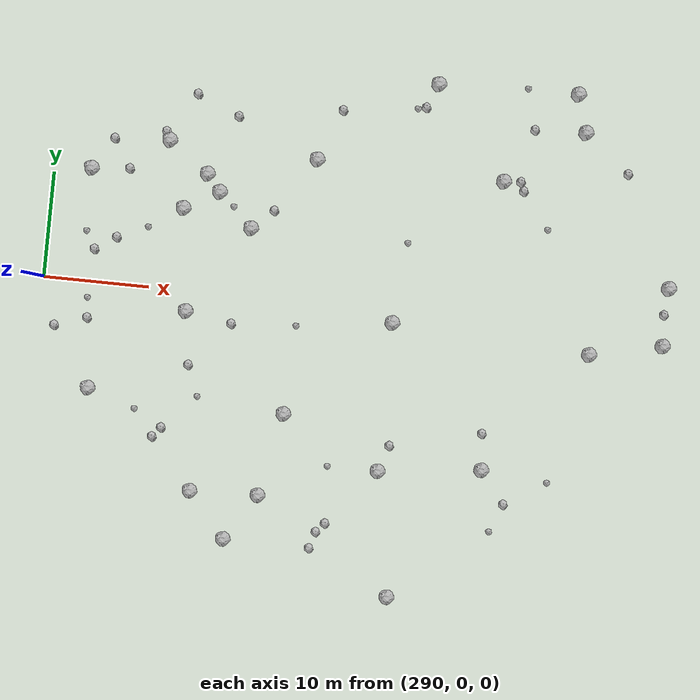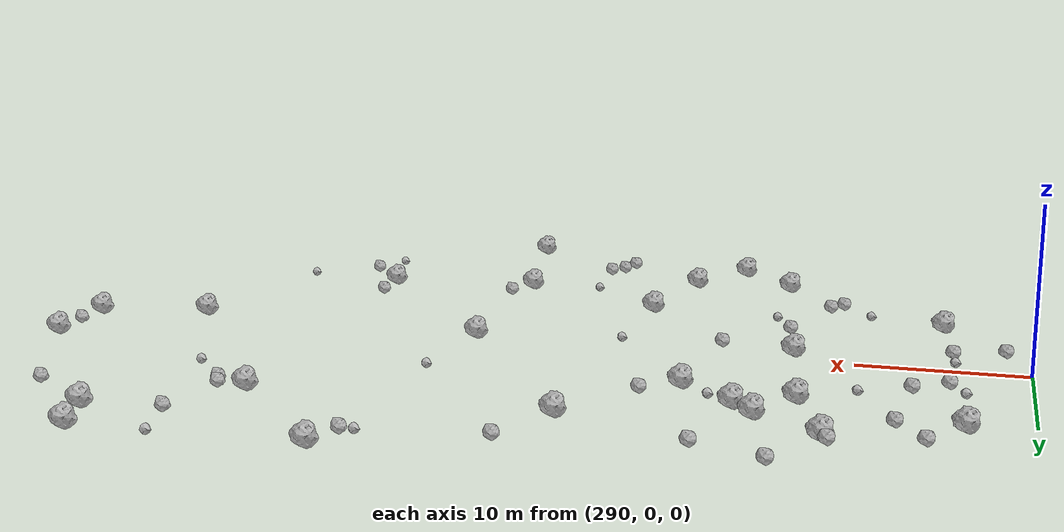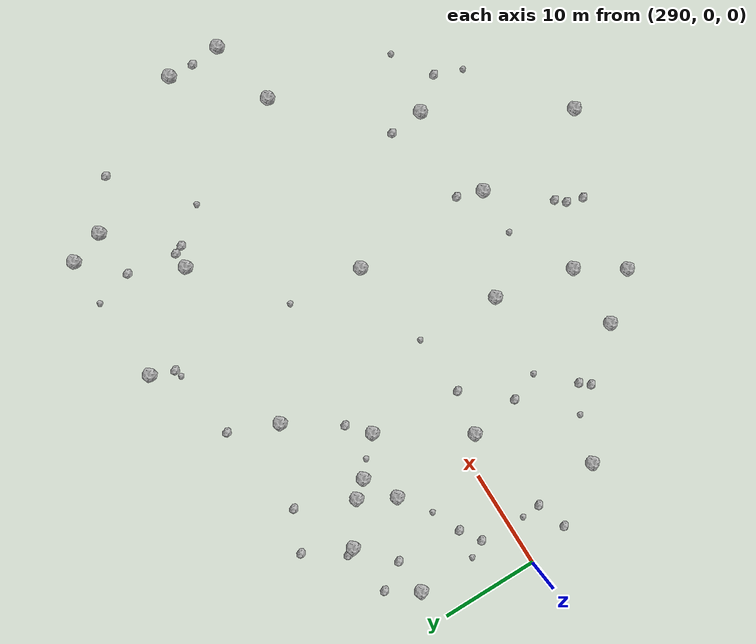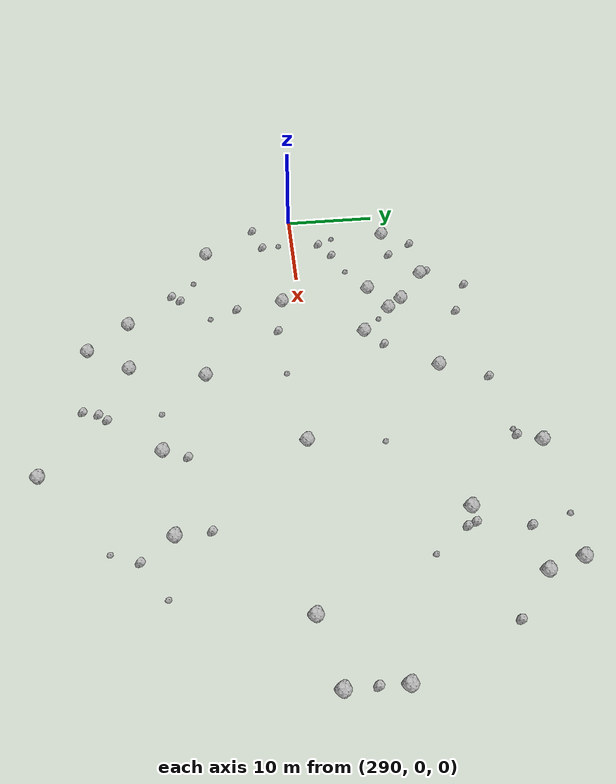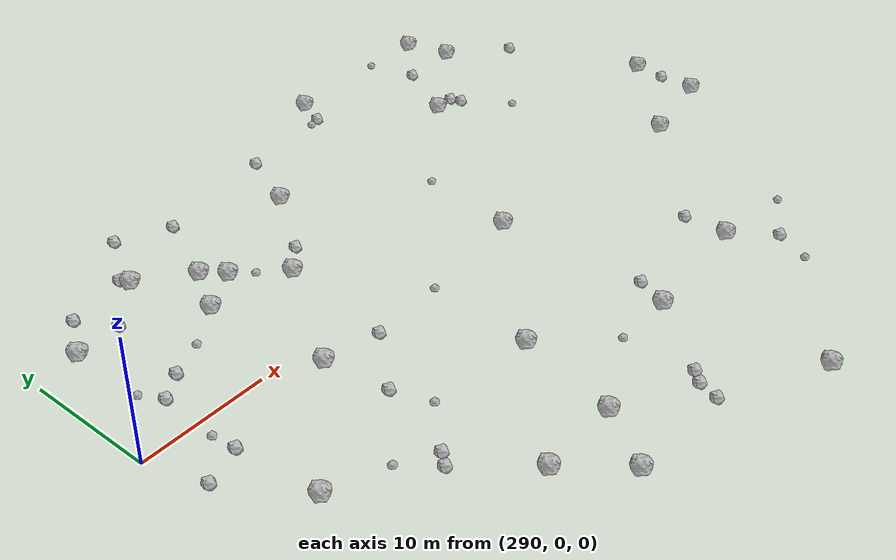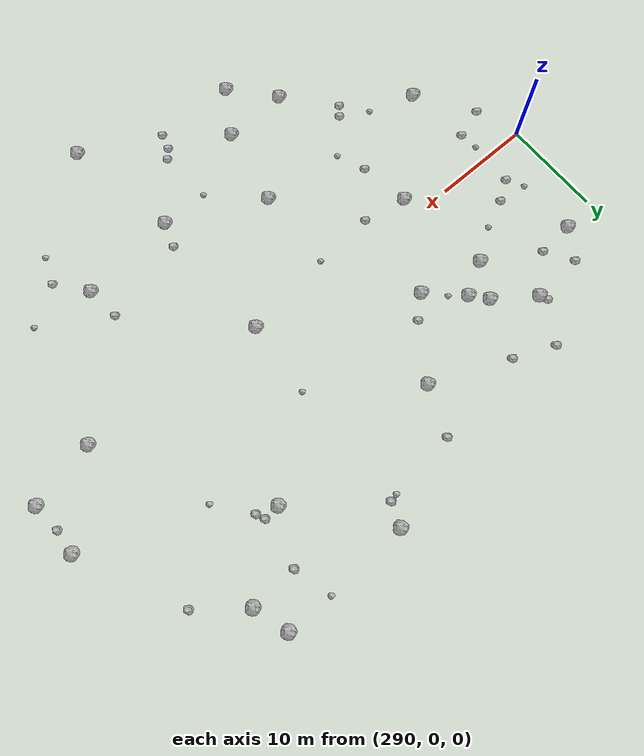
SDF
<sdf version="1.6">
 <world name="default">
  <include><uri>model://sun</uri></include>
  <model name="rock1_8_3">
   <include><uri>model://rock1</uri><pose>342.36955122674186 -2.3604368592508003 0.5 0 0 0</pose></include>
  </model>
  <model name="rock1_8_4">
   <include><uri>model://rock1</uri><pose>325.4289982323037 -27.14949486706932 0.5 0 0 0</pose></include>
  </model>
  <model name="rock1_8_5">
   <include><uri>model://rock1</uri><pose>303.8062275346328 -1.9625408287736406 0.5 0 0 0</pose></include>
  </model>
  <model name="rock1_8_6">
   <include><uri>model://rock1</uri><pose>313.99393467981986 -10.78301394774767 0.5 0 0 0</pose></include>
  </model>
  <model name="rock1_8_7">
   <include><uri>model://rock1</uri><pose>305.83089619229014 -18.92113796781782 0.5 0 0 0</pose></include>
  </model>
  <model name="rock1_8_8">
   <include><uri>model://rock1</uri><pose>325.6858894813673 21.83606825848345 0.5 0 0 0</pose></include>
  </model>
  <model name="rock1_8_9">
   <include><uri>model://rock1</uri><pose>302.6532262448312 7.768197607167572 0.5 0 0 0</pose></include>
  </model>
  <model name="rock1_8_10">
   <include><uri>model://rock1</uri><pose>295.2410692131388 -10.120140064617935 0.5 0 0 0</pose></include>
  </model>
  <model name="rock1_8_11">
   <include><uri>model://rock1</uri><pose>333.2353529023694 -14.27732517651181 0.5 0 0 0</pose></include>
  </model>
  <model name="rock1_8_12">
   <include><uri>model://rock1</uri><pose>300.76637799465016 14.072326148376575 0.5 0 0 0</pose></include>
  </model>
  <model name="rock1_8_13">
   <include><uri>model://rock1</uri><pose>314.87464990082265 13.602836707348416 0.5 0 0 0</pose></include>
  </model>
  <model name="rock1_8_14">
   <include><uri>model://rock1</uri><pose>332.7208774002571 13.237217117662027 0.5 0 0 0</pose></include>
  </model>
  <model name="rock1_8_15">
   <include><uri>model://rock1</uri><pose>338.9891218526728 22.16918138360596 0.5 0 0 0</pose></include>
  </model>
  <model name="rock1_8_16">
   <include><uri>model://rock1</uri><pose>312.29798456172347 -18.712174309923686 0.5 0 0 0</pose></include>
  </model>
  <model name="rock1_8_17">
   <include><uri>model://rock1</uri><pose>349.2410928085949 -0.8815709408722441 0.5 0 0 0</pose></include>
  </model>
  <model name="rock1_8_18">
   <include><uri>model://rock1</uri><pose>323.4317532591939 -15.322728286404661 0.5 0 0 0</pose></include>
  </model>
  <model name="rock1_8_19">
   <include><uri>model://rock1</uri><pose>305.9423822632888 9.624137378649479 0.5 0 0 0</pose></include>
  </model>
  <model name="rock1_8_20">
   <include><uri>model://rock1</uri><pose>309.4196907696066 -23.155626609347415 0.5 0 0 0</pose></include>
  </model>
  <model name="rock1_8_21">
   <include><uri>model://rock1</uri><pose>323.4681284672341 -1.1715184547726096 0.5 0 0 0</pose></include>
  </model>
  <model name="rock1_8_22">
   <include><uri>model://rock1</uri><pose>309.229420583931 6.479656965969255 0.5 0 0 0</pose></include>
  </model>
  <model name="rock1_8_23">
   <include><uri>model://rock1</uri><pose>349.3096753649355 4.627437727287138 0.5 0 0 0</pose></include>
  </model>
  <model name="rock1_8_24">
   <include><uri>model://rock1</uri><pose>340.0497879263868 18.603715669918984 0.5 0 0 0</pose></include>
  </model>
  <model name="rock1_8_25">
   <include><uri>model://rock1</uri><pose>293.60972243644125 10.715494523561077 0.5 0 0 0</pose></include>
  </model>
  <model name="rock1_8_26">
   <include><uri>model://rock1</uri><pose>304.62761136373365 11.230757309789013 0.5 0 0 0</pose></include>
  </model>
  <model name="rock2_8_0">
   <include><uri>model://rock2</uri><pose>316.8589588131403 18.50422622291689 0.3 0 0 0</pose></include>
  </model>
  <model name="rock2_8_1">
   <include><uri>model://rock2</uri><pose>335.60858984058353 -17.350725124790014 0.3 0 0 0</pose></include>
  </model>
  <model name="rock2_8_2">
   <include><uri>model://rock2</uri><pose>308.1922333190499 -2.7405564052263927 0.3 0 0 0</pose></include>
  </model>
  <model name="rock2_8_3">
   <include><uri>model://rock2</uri><pose>294.4893632867725 -3.484055527043772 0.3 0 0 0</pose></include>
  </model>
  <model name="rock2_8_4">
   <include><uri>model://rock2</uri><pose>296.5700237540271 4.410868481759785 0.3 0 0 0</pose></include>
  </model>
  <model name="rock2_8_5">
   <include><uri>model://rock2</uri><pose>335.19426748103206 18.41039818333583 0.3 0 0 0</pose></include>
  </model>
  <model name="rock2_8_6">
   <include><uri>model://rock2</uri><pose>334.7026083815706 12.496789588325242 0.3 0 0 0</pose></include>
  </model>
  <model name="rock2_8_7">
   <include><uri>model://rock2</uri><pose>311.2444963743373 8.361767199114496 0.3 0 0 0</pose></include>
  </model>
  <model name="rock2_8_8">
   <include><uri>model://rock2</uri><pose>297.18298655725937 11.03140494282787 0.3 0 0 0</pose></include>
  </model>
  <model name="rock2_8_9">
   <include><uri>model://rock2</uri><pose>317.62000688534 -23.271231889124657 0.3 0 0 0</pose></include>
  </model>
  <model name="rock2_8_10">
   <include><uri>model://rock2</uri><pose>302.97502134174346 18.72490724094655 0.3 0 0 0</pose></include>
  </model>
  <model name="rock2_8_11">
   <include><uri>model://rock2</uri><pose>332.9637466884192 -10.839474458303716 0.3 0 0 0</pose></include>
  </model>
  <model name="rock2_8_12">
   <include><uri>model://rock2</uri><pose>318.9011484882806 -20.782935733315835 0.3 0 0 0</pose></include>
  </model>
  <model name="rock2_8_13">
   <include><uri>model://rock2</uri><pose>304.4984327608918 -7.024102178742794 0.3 0 0 0</pose></include>
  </model>
  <model name="rock2_8_14">
   <include><uri>model://rock2</uri><pose>294.558453301834 3.0889178537140722 0.3 0 0 0</pose></include>
  </model>
  <model name="rock2_8_15">
   <include><uri>model://rock2</uri><pose>324.29914732876773 -12.845139489077905 0.3 0 0 0</pose></include>
  </model>
  <model name="rock2_8_16">
   <include><uri>model://rock2</uri><pose>291.43742812392503 -4.483427027999426 0.3 0 0 0</pose></include>
  </model>
  <model name="rock2_8_17">
   <include><uri>model://rock2</uri><pose>301.71964175558907 -14.146490112385031 0.3 0 0 0</pose></include>
  </model>
  <model name="rock2_8_18">
   <include><uri>model://rock2</uri><pose>324.7086418985502 19.536595603707603 0.3 0 0 0</pose></include>
  </model>
  <model name="rock2_8_19">
   <include><uri>model://rock2</uri><pose>349.09741631380143 2.0804649044704036 0.3 0 0 0</pose></include>
  </model>
  <model name="rock2_8_20">
   <include><uri>model://rock2</uri><pose>334.33923454710964 13.36152354228642 0.3 0 0 0</pose></include>
  </model>
  <model name="rock2_8_21">
   <include><uri>model://rock2</uri><pose>318.10721578016995 -21.674803533901407 0.3 0 0 0</pose></include>
  </model>
  <model name="rock2_8_22">
   <include><uri>model://rock2</uri><pose>300.35256958427914 14.888935209300477 0.3 0 0 0</pose></include>
  </model>
  <model name="rock2_8_23">
   <include><uri>model://rock2</uri><pose>307.0376094296741 16.973838644710277 0.3 0 0 0</pose></include>
  </model>
  <model name="rock2_8_24">
   <include><uri>model://rock2</uri><pose>302.49886231859415 -13.20844373867818 0.3 0 0 0</pose></include>
  </model>
  <model name="rock2_8_25">
   <include><uri>model://rock2</uri><pose>295.4942228415266 13.76680333767036 0.3 0 0 0</pose></include>
  </model>
  <model name="rock2_8_26">
   <include><uri>model://rock2</uri><pose>344.4189874102618 15.088948999245368 0.3 0 0 0</pose></include>
  </model>
  <model name="rock3_8_0">
   <include><uri>model://rock3</uri><pose>305.60017775021504 -9.975598410966025 0.2 0 0 0</pose></include>
  </model>
  <model name="rock3_8_1">
   <include><uri>model://rock3</uri><pose>323.8908397195648 19.340489457582734 0.2 0 0 0</pose></include>
  </model>
  <model name="rock3_8_2">
   <include><uri>model://rock3</uri><pose>339.53347981180156 -14.927628242957898 0.2 0 0 0</pose></include>
  </model>
  <model name="rock3_8_3">
   <include><uri>model://rock3</uri><pose>299.752929345594 -11.695652982292096 0.2 0 0 0</pose></include>
  </model>
  <model name="rock3_8_4">
   <include><uri>model://rock3</uri><pose>318.58723475563517 -15.376275925262018 0.2 0 0 0</pose></include>
  </model>
  <model name="rock3_8_5">
   <include><uri>model://rock3</uri><pose>299.4282230610808 5.651495012283341 0.2 0 0 0</pose></include>
  </model>
  <model name="rock3_8_6">
   <include><uri>model://rock3</uri><pose>334.17026464789717 22.257174818602657 0.2 0 0 0</pose></include>
  </model>
  <model name="rock3_8_7">
   <include><uri>model://rock3</uri><pose>324.17338950066323 6.510467082551948 0.2 0 0 0</pose></include>
  </model>
  <model name="rock3_8_8">
   <include><uri>model://rock3</uri><pose>314.3306422407906 -2.3672817538609934 0.2 0 0 0</pose></include>
  </model>
  <model name="rock3_8_9">
   <include><uri>model://rock3</uri><pose>294.2975018274724 -1.600199197865745 0.2 0 0 0</pose></include>
  </model>
  <model name="rock3_8_10">
   <include><uri>model://rock3</uri><pose>337.2949565350049 9.053891400277976 0.2 0 0 0</pose></include>
  </model>
  <model name="rock3_8_11">
   <include><uri>model://rock3</uri><pose>307.3475807327299 8.357657541090788 0.2 0 0 0</pose></include>
  </model>
  <model name="rock3_8_12">
   <include><uri>model://rock3</uri><pose>334.4993076703491 -20.095683544103665 0.2 0 0 0</pose></include>
  </model>
  <model name="rock3_8_13">
   <include><uri>model://rock3</uri><pose>293.6121840041517 4.734965854719512 0.2 0 0 0</pose></include>
  </model>
 </world>
</sdf>
